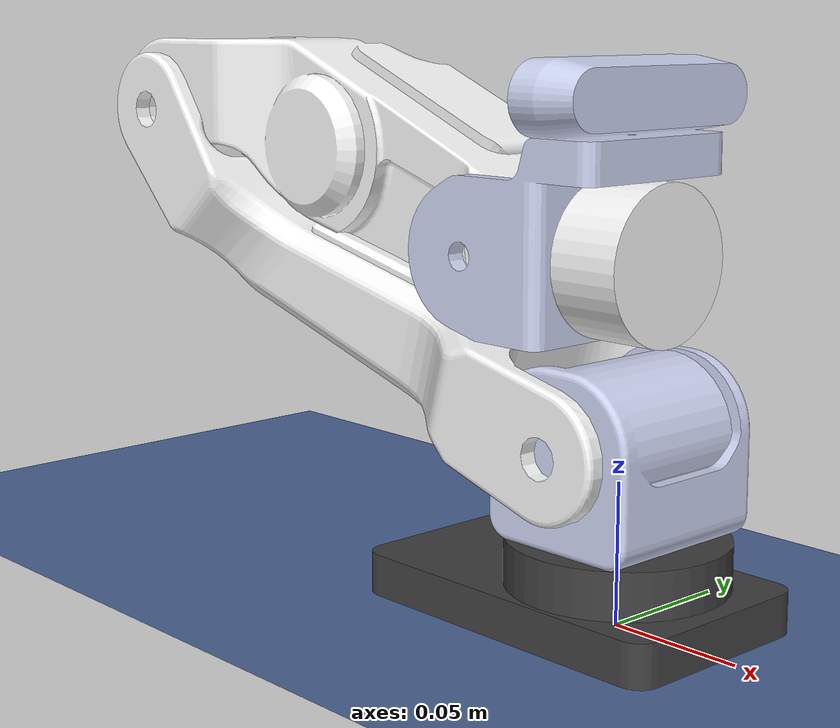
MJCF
<mujoco model="kitchen_arm">
  <compiler angle="radian"/>
  <option gravity="0 0 -9.81"/>
  <visual>
    <global offwidth="960" offheight="960"/>
  </visual>

  <asset>
    <mesh name="base_link" content_type="model/stl" file="meshes/base_link.STL"/>
    <mesh name="link1" content_type="model/stl" file="meshes/link1.STL"/>
    <mesh name="link2" content_type="model/stl" file="meshes/link2.STL"/>
    <mesh name="link3" content_type="model/stl" file="meshes/link3.STL"/>
    <mesh name="link4" content_type="model/stl" file="meshes/link4.STL"/>
    <mesh name="link5" content_type="model/stl" file="meshes/link5.STL"/>
  </asset>

  <worldbody>
    <light pos="0 0 2" dir="0 0 -1" diffuse="0.8 0.8 0.8"/>
    <light pos="1 1 2" dir="-1 -1 -1" diffuse="0.4 0.4 0.4"/>
    <geom type="plane" size="2 2 0.1" rgba="0.3 0.4 0.6 1"/>

    <geom type="mesh" rgba="0.24706 0.24706 0.24706 1" mesh="base_link"
          contype="0" conaffinity="0"/>

    <body name="link1">
      <inertial pos="1.1364e-10 6.6332e-11 0.058884" quat="0.5 0.5 -0.5 0.5" mass="0.17885" diaginertia="0.0001045 9.2104e-05 8.2434e-05"/>
      <joint name="joint1" pos="0 0 0" axis="0 0 -1"
             range="-3.1416 3.1416" limited="true" damping="2"/>
      <geom type="mesh" rgba="0.79216 0.81961 0.93333 1" mesh="link1"/>
      <body name="link2" pos="0 0 0.065">
        <inertial pos="-0.13343 6.7337e-06 0.048494" quat="-8.50801e-05 0.823218 0.000257512 0.567725" mass="0.5382" diaginertia="0.00208982 0.0019739 0.000300994"/>
        <joint name="joint2" pos="0 0 0" axis="0 1 0"
               range="0 2.618" limited="true" damping="5"/>
        <geom type="mesh" rgba="0.96078 0.96078 0.96471 1" mesh="link2"/>
        <body name="link3" pos="-0.21751 0 0.10143">
          <inertial pos="0.0897 0.0027406 -0.011513" quat="0.403825 0.580277 0.56215 0.429176" mass="0.38723" diaginertia="0.000988413 0.000957198 0.0001662"/>
          <joint name="joint3" pos="0 0 0" axis="0 -1 0"
                 range="0 2.1817" limited="true" damping="5"/>
          <geom type="mesh" rgba="0.96078 0.96078 0.96471 1" mesh="link3"/>
          <body name="link4" pos="0.17517 0 -0.041428">
            <inertial pos="0.031897 2.7033e-09 0.026158" quat="0.664914 0.664914 0.240603 -0.240603" mass="0.13511" diaginertia="0.000136079 0.000101771 7.3755e-05"/>
            <joint name="joint4" pos="0 0 0" axis="0 -1 0"
                   range="-1.8326 1.2217" limited="true" damping="2"/>
            <geom type="mesh" rgba="0.79216 0.81961 0.93333 1" mesh="link4"/>
            <body name="link5" pos="0.035 0 0">
              <inertial pos="0.01345 0 0" mass="0.061607" diaginertia="2.2456e-05 1.4943e-05 1.4943e-05"/>
              <joint name="joint5" pos="0 0 0" axis="-1 0 0"
                     range="-6.2832 6.2832" limited="true" damping="1"/>
              <geom type="mesh" rgba="0.96078 0.96078 0.96471 1" mesh="link5"/>
            </body>
          </body>
        </body>
      </body>
    </body>
  </worldbody>

  <actuator>
    <motor name="act1" joint="joint1" gear="80"  ctrllimited="true" ctrlrange="-1 1"/>
    <motor name="act2" joint="joint2" gear="100" ctrllimited="true" ctrlrange="-1 1"/>
    <motor name="act3" joint="joint3" gear="100" ctrllimited="true" ctrlrange="-1 1"/>
    <motor name="act4" joint="joint4" gear="30"  ctrllimited="true" ctrlrange="-1 1"/>
    <motor name="act5" joint="joint5" gear="5"   ctrllimited="true" ctrlrange="-1 1"/>
  </actuator>

</mujoco>
